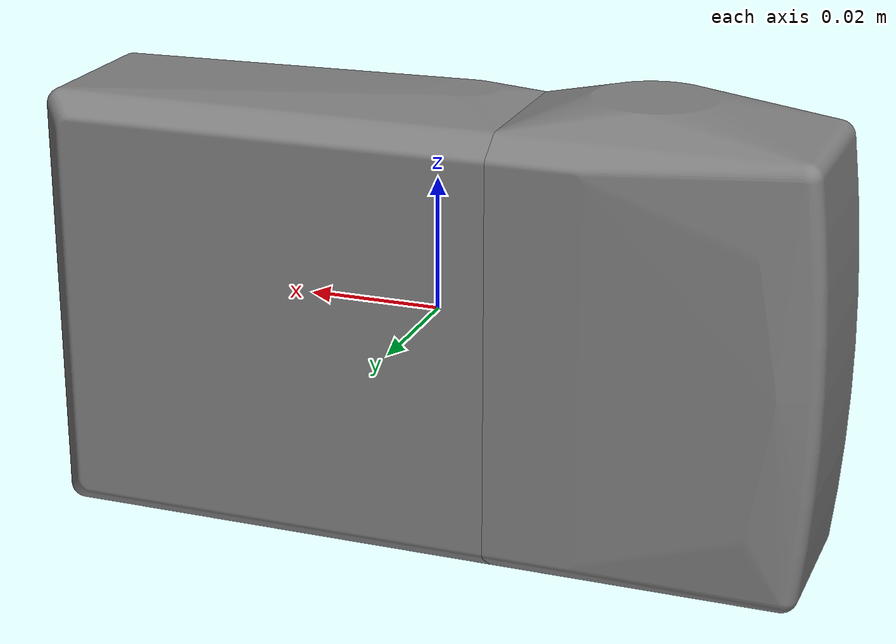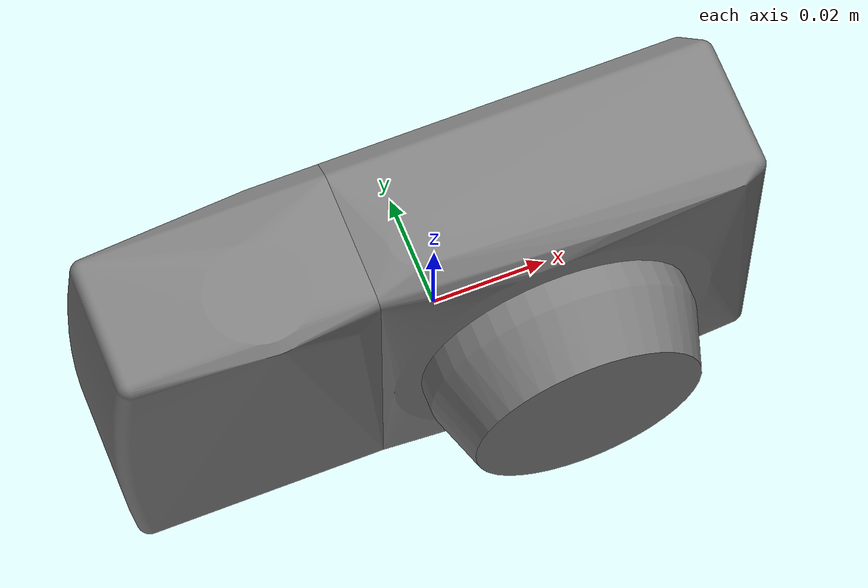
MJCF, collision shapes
<mujoco model="camera">
  <compiler meshdir="."/>

  <asset>
    <mesh name="camera" file="camera.stl"/>
    <mesh name="camera_collision_hull_000" file="camera_collision_hull_000.stl"/>
    <mesh name="camera_collision_hull_001" file="camera_collision_hull_001.stl"/>
    <mesh name="camera_collision_hull_002" file="camera_collision_hull_002.stl"/>
  </asset>

  <worldbody>
    <body name="object">
      <freejoint name="object_joint"/>
      <geom name="object_visual" type="mesh" mesh="camera"
            contype="0" conaffinity="0" group="2" rgba="0.9 0.9 0.8 1" mass="0"/>
      <geom name="camera_collision_hull_000_collision" type="mesh" mesh="camera_collision_hull_000"
            mass="0.0167" condim="6" friction="1.0 0.002 0.002" priority="1"/>
      <geom name="camera_collision_hull_001_collision" type="mesh" mesh="camera_collision_hull_001"
            mass="0.0167" condim="6" friction="1.0 0.002 0.002" priority="1"/>
      <geom name="camera_collision_hull_002_collision" type="mesh" mesh="camera_collision_hull_002"
            mass="0.0167" condim="6" friction="1.0 0.002 0.002" priority="1"/>
    </body>
  </worldbody>
</mujoco>
